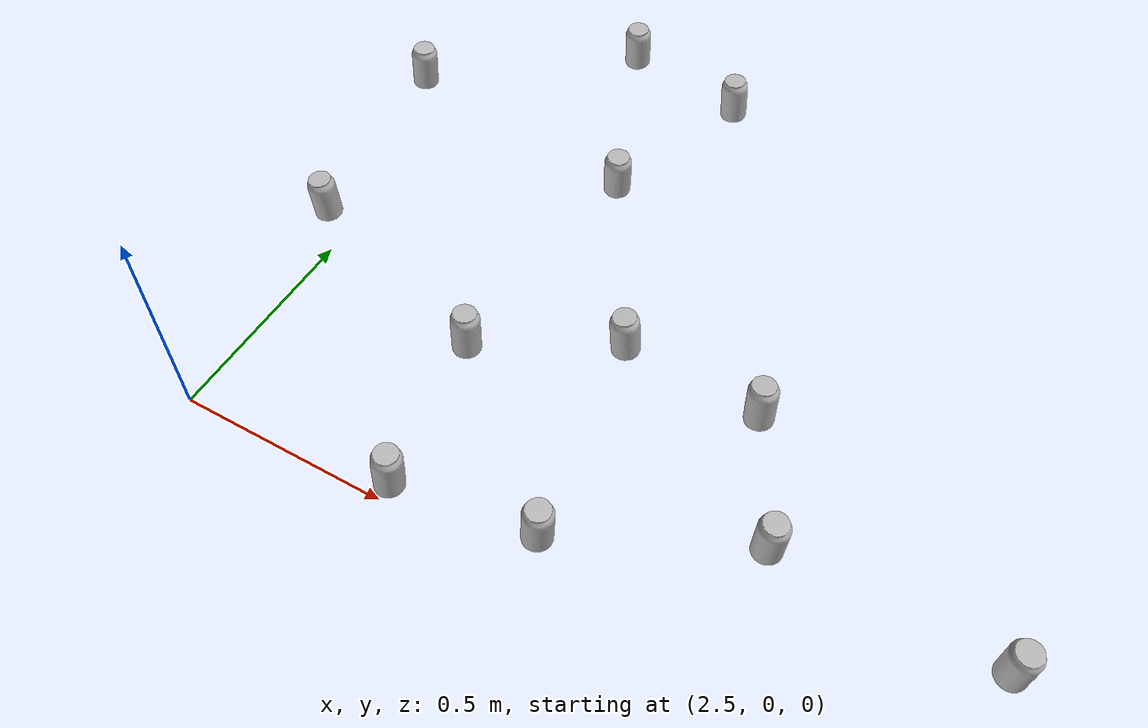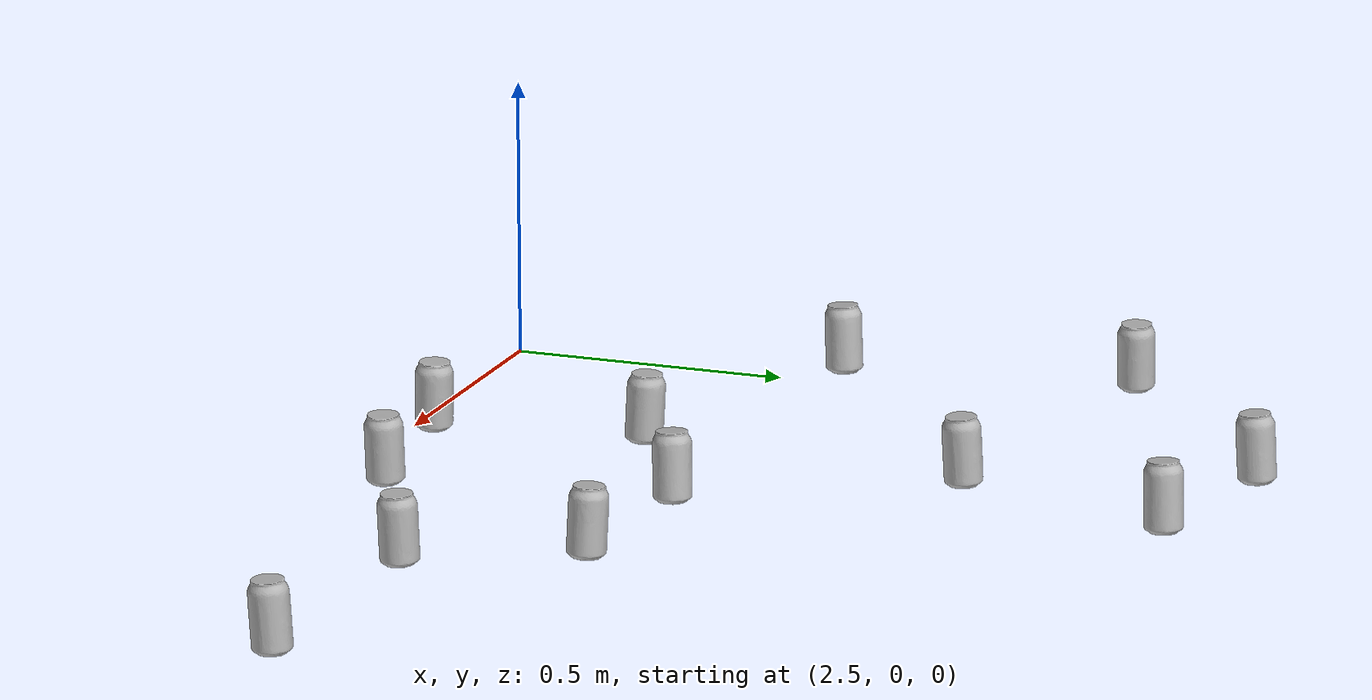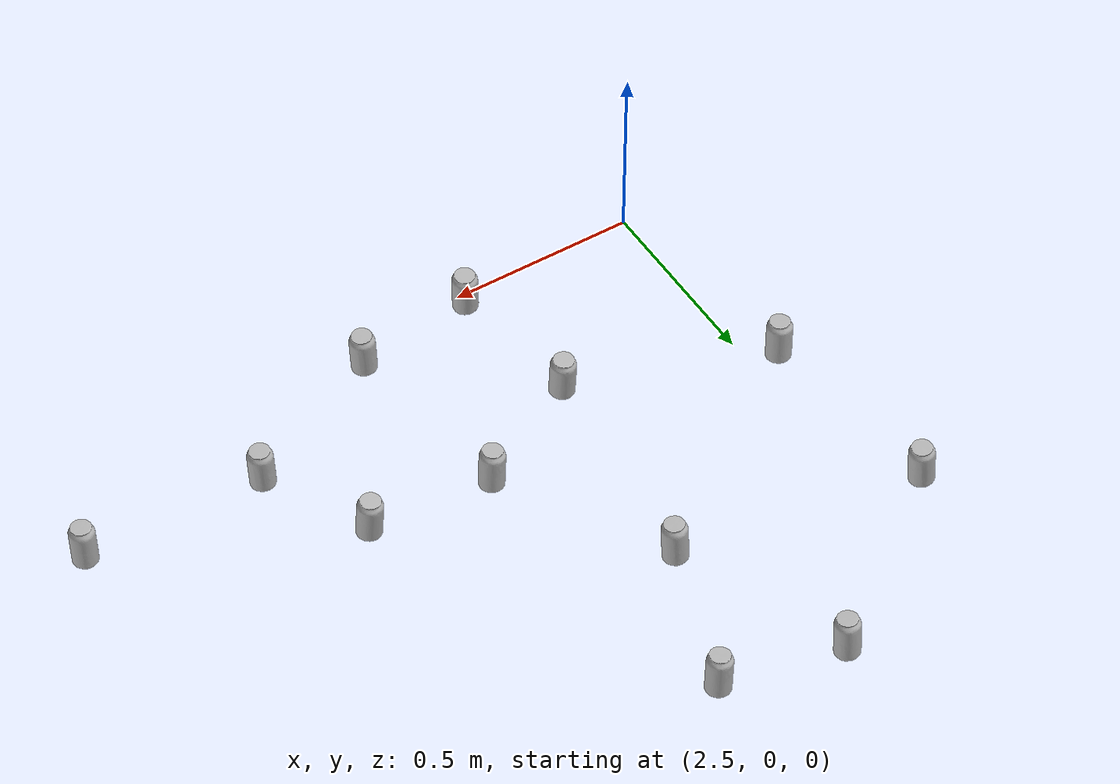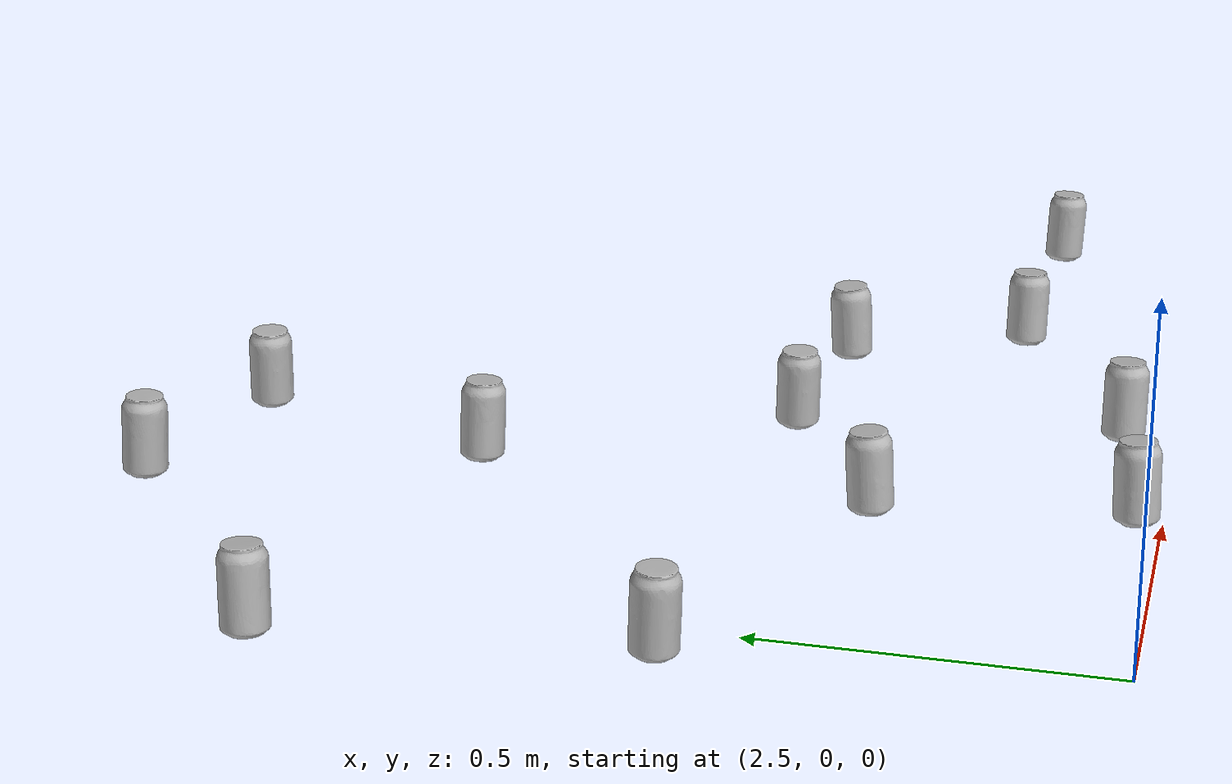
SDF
<sdf version="1.6">
 <world name="default">
  <model name="coke_can10">
   <link name="link">
    <inertial>
     <pose>0 0 0.06 0 -0 0</pose>
     <mass>0.39</mass>
     <inertia>
      <ixx>0.00055575</ixx>
      <ixy>0</ixy>
      <ixz>0</ixz>
      <iyy>0.00055575</iyy>
      <iyz>0</iyz>
      <izz>0.0001755</izz>
     </inertia>
    </inertial>
    <collision name="collision">
     <pose>0.003937 0.004724 -0.18 0 -0 0</pose>
     <geometry><mesh><uri>model://coke_can/meshes/coke_can.dae</uri></mesh></geometry>
     <surface>
      <friction><ode><mu>1</mu><mu2>1</mu2></ode></friction>
      <contact>
       <ode><kp>1e+07</kp><kd>1</kd><min_depth>0.001</min_depth><max_vel>0.1</max_vel></ode>
       <collide_bitmask>256</collide_bitmask>
      </contact>
     </surface>
    </collision>
    <visual name="visual">
     <pose>0.003937 0.004724 -0.18 0 -0 0</pose>
     <geometry><mesh><uri>model://coke_can/meshes/coke_can.dae</uri></mesh></geometry>
    </visual>
   </link>
   <pose>2.35601 1.11859 -0.002659 -0.05513 0.007729 -1.19019</pose>
  </model>
  <model name="coke_can16">
   <link name="link">
    <inertial>
     <pose>0 0 0.06 0 -0 0</pose>
     <mass>0.39</mass>
     <inertia>
      <ixx>0.00055575</ixx>
      <ixy>0</ixy>
      <ixz>0</ixz>
      <iyy>0.00055575</iyy>
      <iyz>0</iyz>
      <izz>0.0001755</izz>
     </inertia>
    </inertial>
    <collision name="collision">
     <pose>0.003937 0.004724 -0.18 0 -0 0</pose>
     <geometry><mesh><uri>model://coke_can/meshes/coke_can.dae</uri></mesh></geometry>
     <surface>
      <friction><ode><mu>1</mu><mu2>1</mu2></ode></friction>
      <contact>
       <ode><kp>1e+07</kp><kd>1</kd><min_depth>0.001</min_depth><max_vel>0.1</max_vel></ode>
       <collide_bitmask>256</collide_bitmask>
      </contact>
     </surface>
    </collision>
    <visual name="visual">
     <pose>0.003937 0.004724 -0.18 0 -0 0</pose>
     <geometry><mesh><uri>model://coke_can/meshes/coke_can.dae</uri></mesh></geometry>
    </visual>
   </link>
   <pose>2.42456 0.594703 -0.002659 -0.055083 0.00776 2.64105</pose>
  </model>
  <model name="coke_can133">
   <link name="link">
    <inertial>
     <pose>0 0 0.06 0 -0 0</pose>
     <mass>0.39</mass>
     <inertia>
      <ixx>0.00055575</ixx>
      <ixy>0</ixy>
      <ixz>0</ixz>
      <iyy>0.00055575</iyy>
      <iyz>0</iyz>
      <izz>0.0001755</izz>
     </inertia>
    </inertial>
    <collision name="collision">
     <pose>0.003937 0.004724 -0.18 0 -0 0</pose>
     <geometry><mesh><uri>model://coke_can/meshes/coke_can.dae</uri></mesh></geometry>
     <surface>
      <friction><ode><mu>1</mu><mu2>1</mu2></ode></friction>
      <contact>
       <ode><kp>1e+07</kp><kd>1</kd><min_depth>0.001</min_depth><max_vel>0.1</max_vel></ode>
       <collide_bitmask>256</collide_bitmask>
      </contact>
     </surface>
    </collision>
    <visual name="visual">
     <pose>0.003937 0.004724 -0.18 0 -0 0</pose>
     <geometry><mesh><uri>model://coke_can/meshes/coke_can.dae</uri></mesh></geometry>
    </visual>
   </link>
   <pose>3.32423 0.08261 -0.002659 -0.055124 0.007731 -1.43277</pose>
  </model>
  <model name="coke_can207">
   <link name="link">
    <inertial>
     <pose>0 0 0.06 0 -0 0</pose>
     <mass>0.39</mass>
     <inertia>
      <ixx>0.00055575</ixx>
      <ixy>0</ixy>
      <ixz>0</ixz>
      <iyy>0.00055575</iyy>
      <iyz>0</iyz>
      <izz>0.0001755</izz>
     </inertia>
    </inertial>
    <collision name="collision">
     <pose>0.003937 0.004724 -0.18 0 -0 0</pose>
     <geometry><mesh><uri>model://coke_can/meshes/coke_can.dae</uri></mesh></geometry>
     <surface>
      <friction><ode><mu>1</mu><mu2>1</mu2></ode></friction>
      <contact>
       <ode><kp>1e+07</kp><kd>1</kd><min_depth>0.001</min_depth><max_vel>0.1</max_vel></ode>
       <collide_bitmask>256</collide_bitmask>
      </contact>
     </surface>
    </collision>
    <visual name="visual">
     <pose>0.003937 0.004724 -0.18 0 -0 0</pose>
     <geometry><mesh><uri>model://coke_can/meshes/coke_can.dae</uri></mesh></geometry>
    </visual>
   </link>
   <pose>2.94858 0.409642 -0.002658 -0.055087 0.007758 0.30185</pose>
  </model>
  <model name="coke_can376">
   <link name="link">
    <inertial>
     <pose>0 0 0.06 0 -0 0</pose>
     <mass>0.39</mass>
     <inertia>
      <ixx>0.00055575</ixx>
      <ixy>0</ixy>
      <ixz>0</ixz>
      <iyy>0.00055575</iyy>
      <iyz>0</iyz>
      <izz>0.0001755</izz>
     </inertia>
    </inertial>
    <collision name="collision">
     <pose>0.003937 0.004724 -0.18 0 -0 0</pose>
     <geometry><mesh><uri>model://coke_can/meshes/coke_can.dae</uri></mesh></geometry>
     <surface>
      <friction><ode><mu>1</mu><mu2>1</mu2></ode></friction>
      <contact>
       <ode><kp>1e+07</kp><kd>1</kd><min_depth>0.001</min_depth><max_vel>0.1</max_vel></ode>
       <collide_bitmask>256</collide_bitmask>
      </contact>
     </surface>
    </collision>
    <visual name="visual">
     <pose>0.003937 0.004724 -0.18 0 -0 0</pose>
     <geometry><mesh><uri>model://coke_can/meshes/coke_can.dae</uri></mesh></geometry>
    </visual>
   </link>
   <pose>3.59311 0.554816 -0.002659 -0.055109 0.007745 0.749546</pose>
  </model>
  <model name="coke_can477">
   <link name="link">
    <inertial>
     <pose>0 0 0.06 0 -0 0</pose>
     <mass>0.39</mass>
     <inertia>
      <ixx>0.00055575</ixx>
      <ixy>0</ixy>
      <ixz>0</ixz>
      <iyy>0.00055575</iyy>
      <iyz>0</iyz>
      <izz>0.0001755</izz>
     </inertia>
    </inertial>
    <collision name="collision">
     <pose>0.003937 0.004724 -0.18 0 -0 0</pose>
     <geometry><mesh><uri>model://coke_can/meshes/coke_can.dae</uri></mesh></geometry>
     <surface>
      <friction><ode><mu>1</mu><mu2>1</mu2></ode></friction>
      <contact>
       <ode><kp>1e+07</kp><kd>1</kd><min_depth>0.001</min_depth><max_vel>0.1</max_vel></ode>
       <collide_bitmask>256</collide_bitmask>
      </contact>
     </surface>
    </collision>
    <visual name="visual">
     <pose>0.003937 0.004724 -0.18 0 -0 0</pose>
     <geometry><mesh><uri>model://coke_can/meshes/coke_can.dae</uri></mesh></geometry>
    </visual>
   </link>
   <pose>3.00107 0.037207 -0.002659 -0.055087 0.007761 -0.612697</pose>
  </model>
  <model name="coke_can569">
   <link name="link">
    <inertial>
     <pose>0 0 0.06 0 -0 0</pose>
     <mass>0.39</mass>
     <inertia>
      <ixx>0.00055575</ixx>
      <ixy>0</ixy>
      <ixz>0</ixz>
      <iyy>0.00055575</iyy>
      <iyz>0</iyz>
      <izz>0.0001755</izz>
     </inertia>
    </inertial>
    <collision name="collision">
     <pose>0.003937 0.004724 -0.18 0 -0 0</pose>
     <geometry><mesh><uri>model://coke_can/meshes/coke_can.dae</uri></mesh></geometry>
     <surface>
      <friction><ode><mu>1</mu><mu2>1</mu2></ode></friction>
      <contact>
       <ode><kp>1e+07</kp><kd>1</kd><min_depth>0.001</min_depth><max_vel>0.1</max_vel></ode>
       <collide_bitmask>256</collide_bitmask>
      </contact>
     </surface>
    </collision>
    <visual name="visual">
     <pose>0.003937 0.004724 -0.18 0 -0 0</pose>
     <geometry><mesh><uri>model://coke_can/meshes/coke_can.dae</uri></mesh></geometry>
    </visual>
   </link>
   <pose>4.21856 0.26846 -0.002659 -0.055098 0.007752 -2.23963</pose>
  </model>
  <model name="coke_can646">
   <link name="link">
    <inertial>
     <pose>0 0 0.06 0 -0 0</pose>
     <mass>0.39</mass>
     <inertia>
      <ixx>0.00055575</ixx>
      <ixy>0</ixy>
      <ixz>0</ixz>
      <iyy>0.00055575</iyy>
      <iyz>0</iyz>
      <izz>0.0001755</izz>
     </inertia>
    </inertial>
    <collision name="collision">
     <pose>0.003937 0.004724 -0.18 0 -0 0</pose>
     <geometry><mesh><uri>model://coke_can/meshes/coke_can.dae</uri></mesh></geometry>
     <surface>
      <friction><ode><mu>1</mu><mu2>1</mu2></ode></friction>
      <contact>
       <ode><kp>1e+07</kp><kd>1</kd><min_depth>0.001</min_depth><max_vel>0.1</max_vel></ode>
       <collide_bitmask>256</collide_bitmask>
      </contact>
     </surface>
    </collision>
    <visual name="visual">
     <pose>0.003937 0.004724 -0.18 0 -0 0</pose>
     <geometry><mesh><uri>model://coke_can/meshes/coke_can.dae</uri></mesh></geometry>
    </visual>
   </link>
   <pose>3.14215 1.40871 -0.002659 -0.055096 0.007754 2.35212</pose>
  </model>
  <model name="coke_can677">
   <link name="link">
    <inertial>
     <pose>0 0 0.06 0 -0 0</pose>
     <mass>0.39</mass>
     <inertia>
      <ixx>0.00055575</ixx>
      <ixy>0</ixy>
      <ixz>0</ixz>
      <iyy>0.00055575</iyy>
      <iyz>0</iyz>
      <izz>0.0001755</izz>
     </inertia>
    </inertial>
    <collision name="collision">
     <pose>0.003937 0.004724 -0.18 0 -0 0</pose>
     <geometry><mesh><uri>model://coke_can/meshes/coke_can.dae</uri></mesh></geometry>
     <surface>
      <friction><ode><mu>1</mu><mu2>1</mu2></ode></friction>
      <contact>
       <ode><kp>1e+07</kp><kd>1</kd><min_depth>0.001</min_depth><max_vel>0.1</max_vel></ode>
       <collide_bitmask>256</collide_bitmask>
      </contact>
     </surface>
    </collision>
    <visual name="visual">
     <pose>0.003937 0.004724 -0.18 0 -0 0</pose>
     <geometry><mesh><uri>model://coke_can/meshes/coke_can.dae</uri></mesh></geometry>
    </visual>
   </link>
   <pose>3.73046 0.279944 -0.002659 -0.055108 0.007743 -1.65237</pose>
  </model>
  <model name="coke_can738">
   <link name="link">
    <inertial>
     <pose>0 0 0.06 0 -0 0</pose>
     <mass>0.39</mass>
     <inertia>
      <ixx>0.00055575</ixx>
      <ixy>0</ixy>
      <ixz>0</ixz>
      <iyy>0.00055575</iyy>
      <iyz>0</iyz>
      <izz>0.0001755</izz>
     </inertia>
    </inertial>
    <collision name="collision">
     <pose>0.003937 0.004724 -0.18 0 -0 0</pose>
     <geometry><mesh><uri>model://coke_can/meshes/coke_can.dae</uri></mesh></geometry>
     <surface>
      <friction><ode><mu>1</mu><mu2>1</mu2></ode></friction>
      <contact>
       <ode><kp>1e+07</kp><kd>1</kd><min_depth>0.001</min_depth><max_vel>0.1</max_vel></ode>
       <collide_bitmask>256</collide_bitmask>
      </contact>
     </surface>
    </collision>
    <visual name="visual">
     <pose>0.003937 0.004724 -0.18 0 -0 0</pose>
     <geometry><mesh><uri>model://coke_can/meshes/coke_can.dae</uri></mesh></geometry>
    </visual>
   </link>
   <pose>3.00378 1.01201 -0.002659 -0.055099 0.00775 -2.27804</pose>
  </model>
  <model name="coke_can869">
   <link name="link">
    <inertial>
     <pose>0 0 0.06 0 -0 0</pose>
     <mass>0.39</mass>
     <inertia>
      <ixx>0.00055575</ixx>
      <ixy>0</ixy>
      <ixz>0</ixz>
      <iyy>0.00055575</iyy>
      <iyz>0</iyz>
      <izz>0.0001755</izz>
     </inertia>
    </inertial>
    <collision name="collision">
     <pose>0.003937 0.004724 -0.18 0 -0 0</pose>
     <geometry><mesh><uri>model://coke_can/meshes/coke_can.dae</uri></mesh></geometry>
     <surface>
      <friction><ode><mu>1</mu><mu2>1</mu2></ode></friction>
      <contact>
       <ode><kp>1e+07</kp><kd>1</kd><min_depth>0.001</min_depth><max_vel>0.1</max_vel></ode>
       <collide_bitmask>256</collide_bitmask>
      </contact>
     </surface>
    </collision>
    <visual name="visual">
     <pose>0.003937 0.004724 -0.18 0 -0 0</pose>
     <geometry><mesh><uri>model://coke_can/meshes/coke_can.dae</uri></mesh></geometry>
    </visual>
   </link>
   <pose>3.25849 0.580321 -0.002659 -0.055103 0.007747 2.25659</pose>
  </model>
  <model name="coke_can955">
   <link name="link">
    <inertial>
     <pose>0 0 0.06 0 -0 0</pose>
     <mass>0.39</mass>
     <inertia>
      <ixx>0.00055575</ixx>
      <ixy>0</ixy>
      <ixz>0</ixz>
      <iyy>0.00055575</iyy>
      <iyz>0</iyz>
      <izz>0.0001755</izz>
     </inertia>
    </inertial>
    <collision name="collision">
     <pose>0.003937 0.004724 -0.18 0 -0 0</pose>
     <geometry><mesh><uri>model://coke_can/meshes/coke_can.dae</uri></mesh></geometry>
     <surface>
      <friction><ode><mu>1</mu><mu2>1</mu2></ode></friction>
      <contact>
       <ode><kp>1e+07</kp><kd>1</kd><min_depth>0.001</min_depth><max_vel>0.1</max_vel></ode>
       <collide_bitmask>256</collide_bitmask>
      </contact>
     </surface>
    </collision>
    <visual name="visual">
     <pose>0.003937 0.004724 -0.18 0 -0 0</pose>
     <geometry><mesh><uri>model://coke_can/meshes/coke_can.dae</uri></mesh></geometry>
    </visual>
   </link>
   <pose>2.81954 1.47677 -0.002658 -0.055085 0.007759 -2.80271</pose>
  </model>
 </world>
</sdf>
